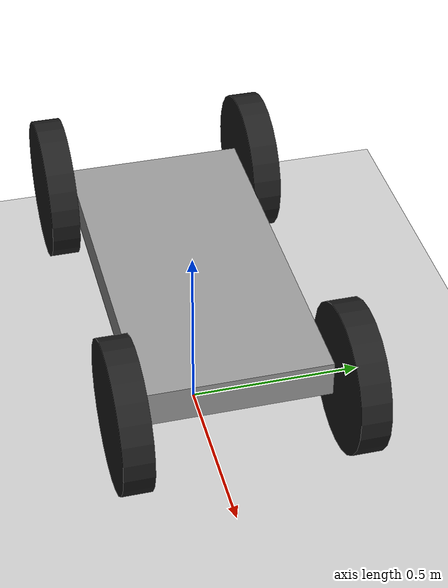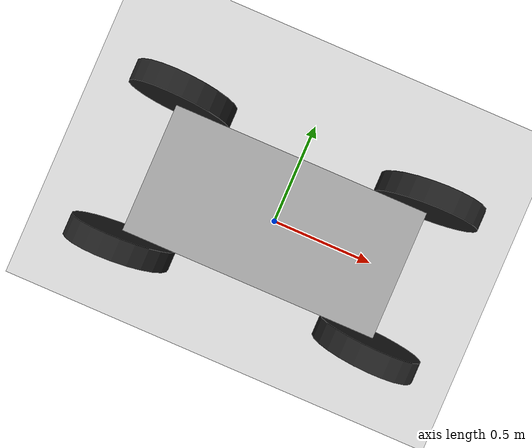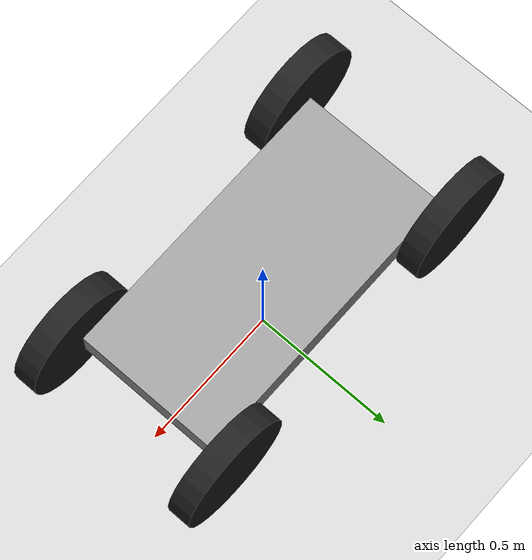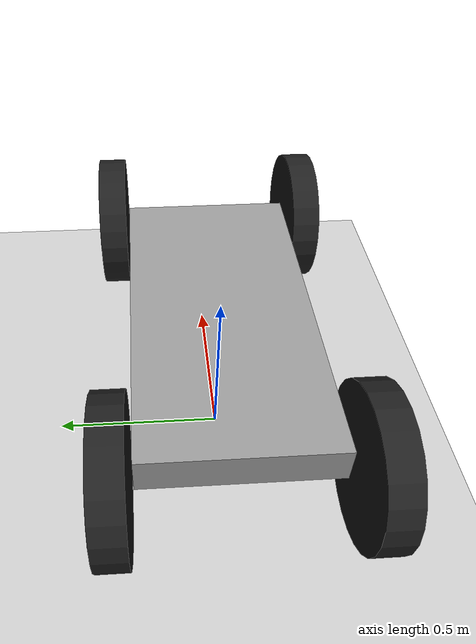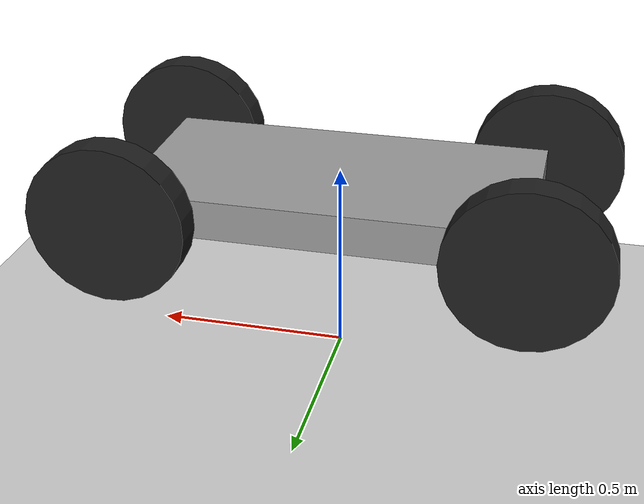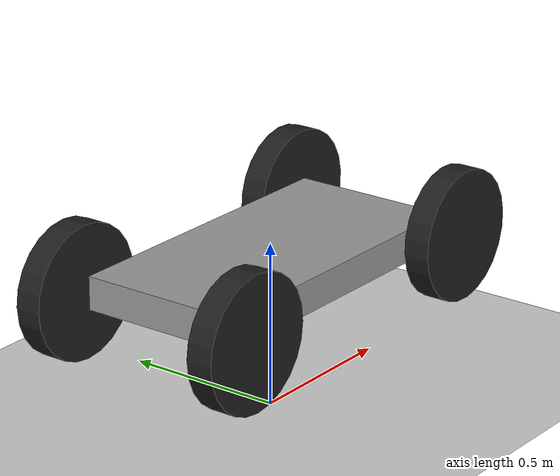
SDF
<?xml version="1.0" ?>
<sdf version="1.6">
    <world name="default">

        <plugin filename="ignition-gazebo-sensors-system" name="ignition::gazebo::systems::Sensors">
            <render_engine>ogre</render_engine>
        </plugin>
        <plugin filename="ignition-gazebo-scene-broadcaster-system" name="ignition::gazebo::systems::SceneBroadcaster">
        </plugin>
        <plugin filename="ignition-gazebo-physics-system" name="ignition::gazebo::systems::Physics">
        </plugin>
        <plugin filename="ignition-gazebo-user-commands-system" name="ignition::gazebo::systems::UserCommands">
        </plugin>

        <include>
            <uri>model://sun</uri>
        </include>

        <include>
            <uri>model://ground_plane</uri>
        </include>

        <include>
            <uri>model://car</uri>
            <pose>0.0 0.0 0.3 0 0 0 </pose>
        </include>

    </world>
</sdf>

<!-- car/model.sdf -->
<sdf version='1.7'>
    <model name="my_robot">
      <link name='chassis'>
        <pose>0 0 0.15 0 -0 0</pose>
        <inertial>
          <pose>0.1 0 0 0 -0 0</pose>
          <mass>10</mass>
          <inertia>
            <ixx>0.216667</ixx>
            <iyy>0.841667</iyy>
            <izz>1.04167</izz>
            <ixy>0</ixy>
            <ixz>0</ixz>
            <iyz>0</iyz>
          </inertia>
        </inertial>
        <collision name='collision'>
          <geometry>
            <box>
              <size>1 0.5 0.1</size>
            </box>
          </geometry>
          <max_contacts>10</max_contacts>
          <surface>
            <contact>
              <ode/>
            </contact>
            <bounce/>
            <friction>
              <torsional>
                <ode/>
              </torsional>
              <ode/>
            </friction>
          </surface>
        </collision>
        <visual name='visual'>
          <geometry>
            <box>
              <size>1 0.5 0.1</size>
            </box>
          </geometry>
          <material>
            <script>
              <uri>file://media/materials/scripts/gazebo.material</uri>
              <name>Gazebo/Grey</name>
            </script>
          </material>
        </visual>
        <self_collide>0</self_collide>
        <enable_wind>0</enable_wind>
        <kinematic>0</kinematic>
      </link>
      <link name='wheel_front_left'>
        <pose>0.5 0.298 0.15 -1.5708 -0.087266 0</pose>
        <inertial>
          <mass>0.5</mass>
          <inertia>
            <ixx>0.00307917</ixx>
            <iyy>0.00307917</iyy>
            <izz>0.005625</izz>
            <ixy>0</ixy>
            <ixz>0</ixz>
            <iyz>0</iyz>
          </inertia>
          <pose>0 0 0 0 -0 0</pose>
        </inertial>
        <collision name='collision'>
          <geometry>
            <cylinder>
              <radius>0.2</radius>
              <length>0.08</length>
            </cylinder>
          </geometry>
          <max_contacts>10</max_contacts>
          <surface>
            <contact>
              <ode/>
            </contact>
            <bounce/>
            <friction>
              <torsional>
                <ode/>
              </torsional>
              <ode/>
            </friction>
          </surface>
        </collision>
        <visual name='visual'>
          <geometry>
            <cylinder>
              <radius>0.2</radius>
              <length>0.08</length>
            </cylinder>
          </geometry>
          <material>
            <script>
              <uri>file://media/materials/scripts/gazebo.material</uri>
              <name>Gazebo/Black</name>
            </script>
          </material>
        </visual>
        <self_collide>0</self_collide>
        <enable_wind>0</enable_wind>
        <kinematic>0</kinematic>
      </link>
      <joint name='wheel_front_left_steer' type='revolute'>
        <parent>chassis</parent>
        <child>wheel_front_left</child>
        <axis>
          <xyz>0 0 1</xyz>
          <limit>
            <upper>1e+16</upper>
            <lower>-1e+16</lower>
          </limit>
          <dynamics>
            <spring_reference>0</spring_reference>
            <spring_stiffness>0</spring_stiffness>
          </dynamics>
        </axis>
      </joint>
      <link name='wheel_front_right'>
        <pose>0.5 -0.298 0.15 -1.5708 -0.087266 0</pose>
        <inertial>
          <mass>0.5</mass>
          <inertia>
            <ixx>0.00307917</ixx>
            <iyy>0.00307917</iyy>
            <izz>0.005625</izz>
            <ixy>0</ixy>
            <ixz>0</ixz>
            <iyz>0</iyz>
          </inertia>
          <pose>0 0 0 0 -0 0</pose>
        </inertial>
        <collision name='collision'>
          <geometry>
            <cylinder>
              <radius>0.2</radius>
              <length>0.08</length>
            </cylinder>
          </geometry>
          <max_contacts>10</max_contacts>
          <surface>
            <contact>
              <ode/>
            </contact>
            <bounce/>
            <friction>
              <torsional>
                <ode/>
              </torsional>
              <ode/>
            </friction>
          </surface>
        </collision>
        <visual name='visual'>
          <geometry>
            <cylinder>
              <radius>0.2</radius>
              <length>0.08</length>
            </cylinder>
          </geometry>
          <material>
            <script>
              <uri>file://media/materials/scripts/gazebo.material</uri>
              <name>Gazebo/Black</name>
            </script>
          </material>
        </visual>
        <self_collide>0</self_collide>
        <enable_wind>0</enable_wind>
        <kinematic>0</kinematic>
      </link>
      <joint name='wheel_front_right_steer' type='revolute'>
        <parent>chassis</parent>
        <child>wheel_front_right</child>
        <axis>
          <xyz>0 0 1</xyz>
          <limit>
            <upper>1e+16</upper>
            <lower>-1e+16</lower>
          </limit>
          <dynamics>
            <spring_reference>0</spring_reference>
            <spring_stiffness>0</spring_stiffness>
          </dynamics>
        </axis>
      </joint>
      <link name='wheel_rear_left'>
        <pose>-0.5 0.298 0.15 -1.5708 0 0</pose>
        <inertial>
          <mass>0.5</mass>
          <inertia>
            <ixx>0.00307917</ixx>
            <iyy>0.00307917</iyy>
            <izz>0.005625</izz>
            <ixy>0</ixy>
            <ixz>0</ixz>
            <iyz>0</iyz>
          </inertia>
          <pose>0 0 0 0 -0 0</pose>
        </inertial>
        <collision name='collision'>
          <geometry>
            <cylinder>
              <radius>0.2</radius>
              <length>0.08</length>
            </cylinder>
          </geometry>
          <max_contacts>10</max_contacts>
          <surface>
            <contact>
              <ode/>
            </contact>
            <bounce/>
            <friction>
              <torsional>
                <ode/>
              </torsional>
              <ode/>
            </friction>
          </surface>
        </collision>
        <visual name='visual'>
          <geometry>
            <cylinder>
              <radius>0.2</radius>
              <length>0.08</length>
            </cylinder>
          </geometry>
          <material>
            <script>
              <uri>file://media/materials/scripts/gazebo.material</uri>
              <name>Gazebo/Black</name>
            </script>
          </material>
        </visual>
        <self_collide>0</self_collide>
        <enable_wind>0</enable_wind>
        <kinematic>0</kinematic>
      </link>
      <joint name='left_wheel_back' type='revolute'>
        <parent>chassis</parent>
        <child>wheel_rear_left</child>
        <axis>
          <xyz>0 0 1</xyz>
          <limit>
            <lower>-1e+16</lower>
            <upper>1e+16</upper>
          </limit>
          <dynamics>
            <spring_reference>0</spring_reference>
            <spring_stiffness>0</spring_stiffness>
          </dynamics>
        </axis>
      </joint>
      <link name='wheel_rear_right'>
        <pose>-0.5 -0.298 0.15 -1.5708 0 0</pose>
        <inertial>
          <mass>0.5</mass>
          <inertia>
            <ixx>0.00307917</ixx>
            <iyy>0.00307917</iyy>
            <izz>0.005625</izz>
            <ixy>0</ixy>
            <ixz>0</ixz>
            <iyz>0</iyz>
          </inertia>
          <pose>0 0 0 0 -0 0</pose>
        </inertial>
        <collision name='collision'>
          <geometry>
            <cylinder>
              <radius>0.2</radius>
              <length>0.08</length>
            </cylinder>
          </geometry>
          <max_contacts>10</max_contacts>
          <surface>
            <contact>
              <ode/>
            </contact>
            <bounce/>
            <friction>
              <torsional>
                <ode/>
              </torsional>
              <ode/>
            </friction>
          </surface>
        </collision>
        <visual name='visual'>
          <geometry>
            <cylinder>
              <radius>0.2</radius>
              <length>0.08</length>
            </cylinder>
          </geometry>
          <material>
            <script>
              <uri>file://media/materials/scripts/gazebo.material</uri>
              <name>Gazebo/Black</name>
            </script>
          </material>
        </visual>
        <self_collide>0</self_collide>
        <enable_wind>0</enable_wind>
        <kinematic>0</kinematic>
      </link>
      <joint name='right_wheel_back' type='revolute'>
        <parent>chassis</parent>
        <child>wheel_rear_right</child>
        <axis>
          <xyz>0 0 1</xyz>
          <limit>
            <lower>-1e+16</lower>
            <upper>1e+16</upper>
          </limit>
          <dynamics>
            <spring_reference>0</spring_reference>
            <spring_stiffness>0</spring_stiffness>
          </dynamics>
        </axis>
      </joint>
      <pose>2.7216 -2.1701 0 0 -0 0</pose>
    </model>
</sdf>
